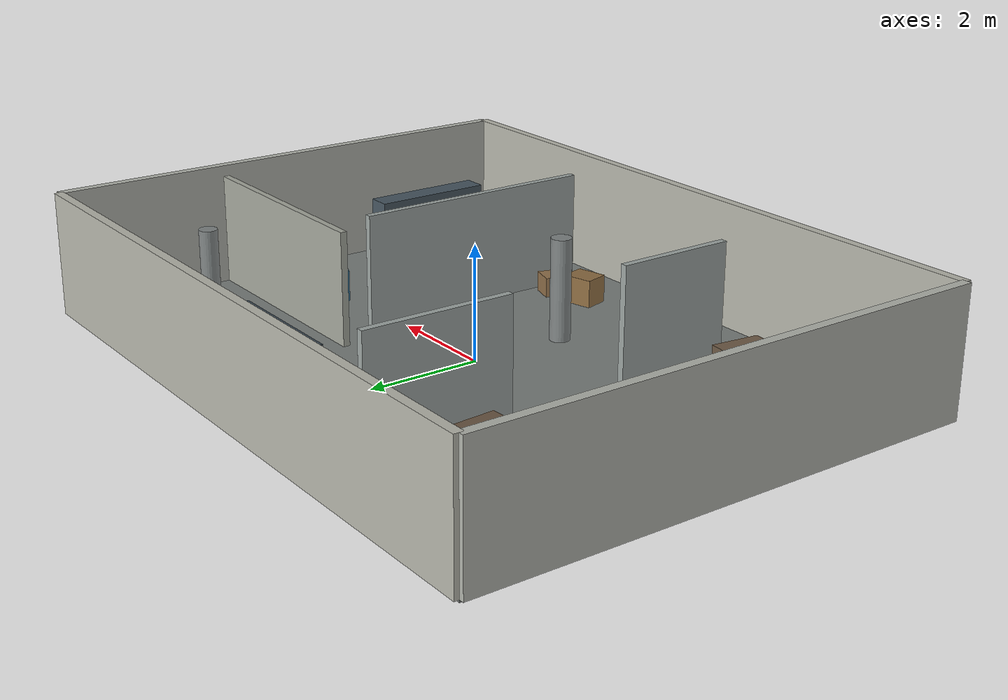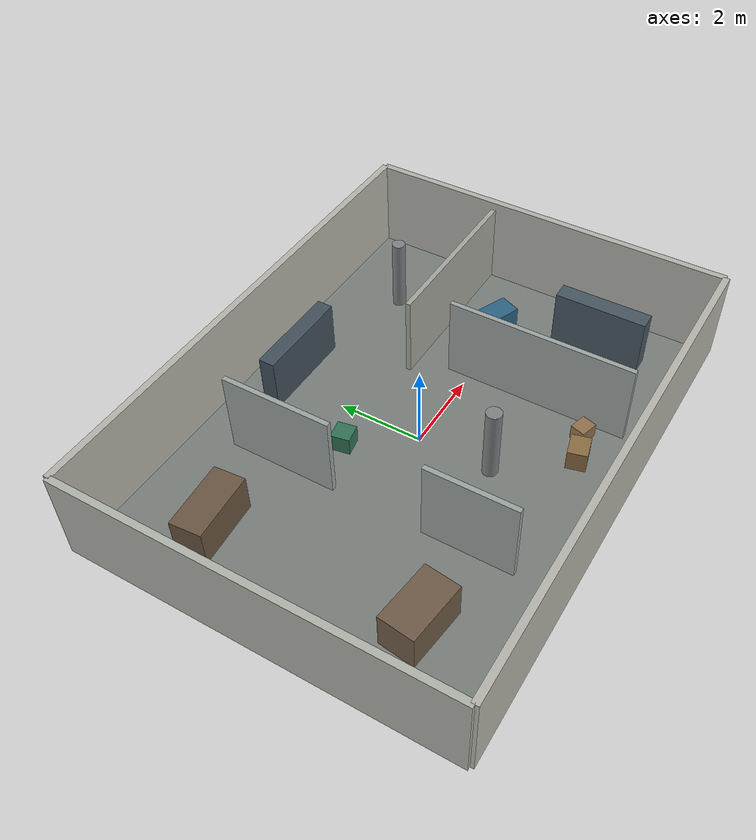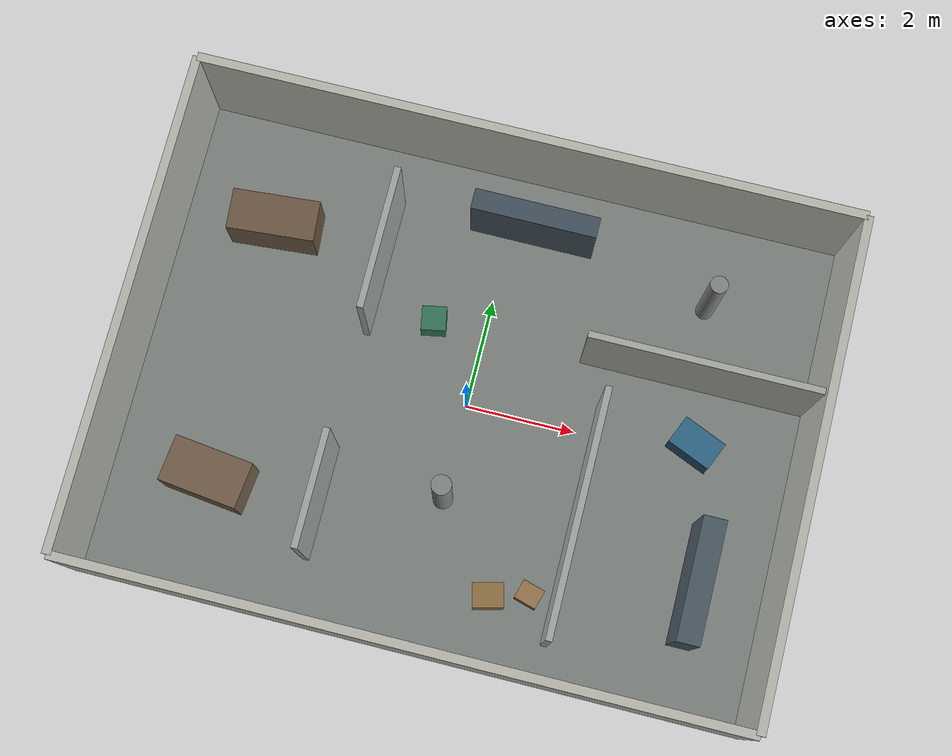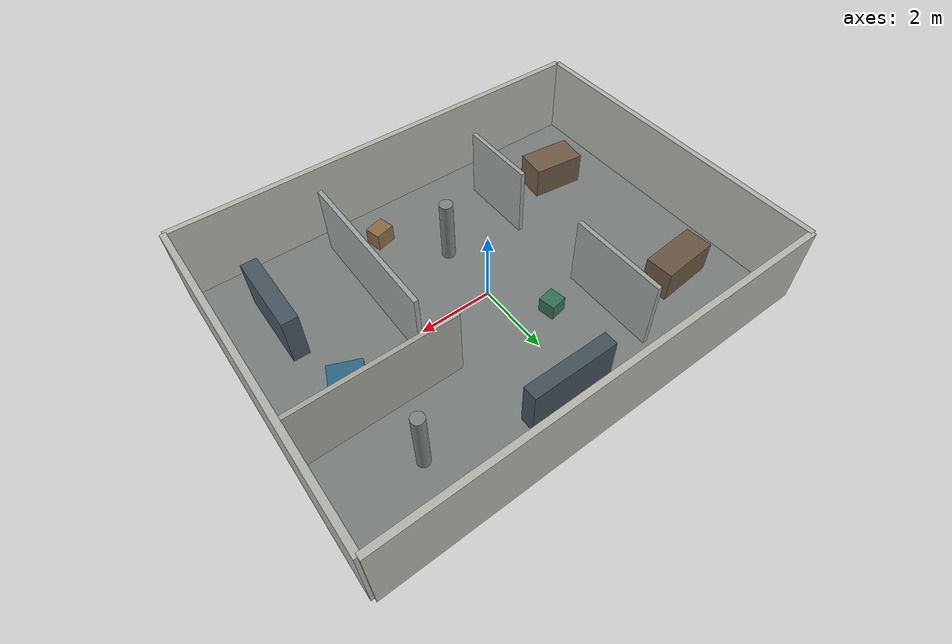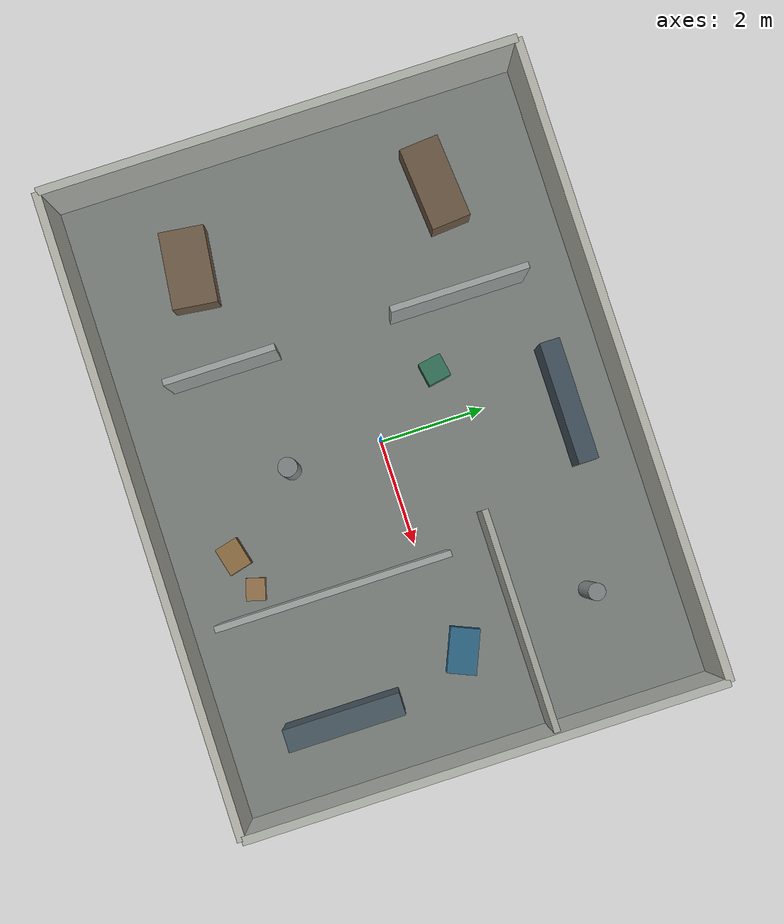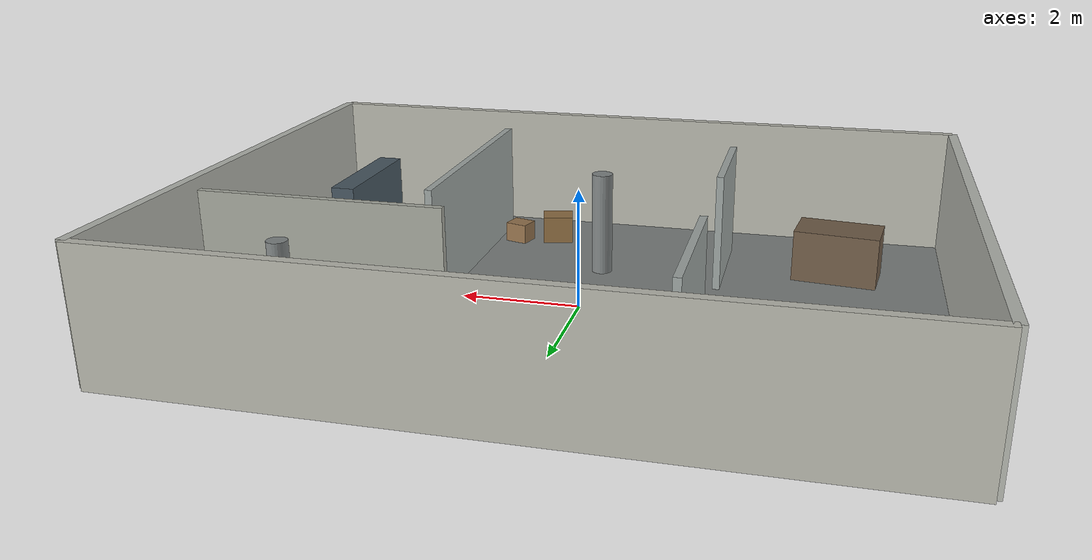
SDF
<?xml version="1.0"?>
<sdf version="1.9">
  <world name="indoor_lab">
    <plugin filename="gz-sim-physics-system" name="gz::sim::systems::Physics"/>
    <plugin filename="gz-sim-user-commands-system" name="gz::sim::systems::UserCommands"/>
    <plugin filename="gz-sim-scene-broadcaster-system" name="gz::sim::systems::SceneBroadcaster"/>
    <plugin filename="gz-sim-sensors-system" name="gz::sim::systems::Sensors">
      <render_engine>ogre2</render_engine>
    </plugin>
    <plugin filename="gz-sim-imu-system" name="gz::sim::systems::Imu"/>

    <scene>
      <ambient>0.45 0.45 0.45 1</ambient>
      <background>0.78 0.82 0.86 1</background>
      <shadows>true</shadows>
    </scene>

    <light name="ceiling_key" type="directional">
      <cast_shadows>true</cast_shadows>
      <pose>0 0 8 0 0 0</pose>
      <diffuse>0.85 0.84 0.78 1</diffuse>
      <specular>0.2 0.2 0.2 1</specular>
      <attenuation>
        <range>20</range>
        <constant>0.8</constant>
        <linear>0.02</linear>
        <quadratic>0.001</quadratic>
      </attenuation>
      <direction>-0.25 0.35 -0.9</direction>
    </light>

    <light name="window_fill" type="point">
      <pose>-4.5 2.8 2.4 0 0 0</pose>
      <diffuse>0.45 0.55 0.65 1</diffuse>
      <specular>0.1 0.1 0.1 1</specular>
      <attenuation>
        <range>9</range>
        <constant>0.7</constant>
        <linear>0.08</linear>
        <quadratic>0.01</quadratic>
      </attenuation>
    </light>

    <model name="floor">
      <static>true</static>
      <pose>0 0 -0.02 0 0 0</pose>
      <link name="link">
        <collision name="collision">
          <geometry>
            <box>
              <size>12 9 0.04</size>
            </box>
          </geometry>
        </collision>
        <visual name="visual">
          <geometry>
            <box>
              <size>12 9 0.04</size>
            </box>
          </geometry>
          <material>
            <ambient>0.48 0.50 0.49 1</ambient>
            <diffuse>0.48 0.50 0.49 1</diffuse>
          </material>
        </visual>
      </link>
    </model>

    <model name="north_wall">
      <static>true</static>
      <pose>0 4.5 1.1 0 0 0</pose>
      <link name="link">
        <collision name="collision"><geometry><box><size>12 0.16 2.2</size></box></geometry></collision>
        <visual name="visual"><geometry><box><size>12 0.16 2.2</size></box></geometry><material><ambient>0.72 0.72 0.68 1</ambient><diffuse>0.72 0.72 0.68 1</diffuse></material></visual>
      </link>
    </model>

    <model name="south_wall">
      <static>true</static>
      <pose>0 -4.5 1.1 0 0 0</pose>
      <link name="link">
        <collision name="collision"><geometry><box><size>12 0.16 2.2</size></box></geometry></collision>
        <visual name="visual"><geometry><box><size>12 0.16 2.2</size></box></geometry><material><ambient>0.72 0.72 0.68 1</ambient><diffuse>0.72 0.72 0.68 1</diffuse></material></visual>
      </link>
    </model>

    <model name="west_wall">
      <static>true</static>
      <pose>-6 0 1.1 0 0 0</pose>
      <link name="link">
        <collision name="collision"><geometry><box><size>0.16 9 2.2</size></box></geometry></collision>
        <visual name="visual"><geometry><box><size>0.16 9 2.2</size></box></geometry><material><ambient>0.70 0.71 0.68 1</ambient><diffuse>0.70 0.71 0.68 1</diffuse></material></visual>
      </link>
    </model>

    <model name="east_wall">
      <static>true</static>
      <pose>6 0 1.1 0 0 0</pose>
      <link name="link">
        <collision name="collision"><geometry><box><size>0.16 9 2.2</size></box></geometry></collision>
        <visual name="visual"><geometry><box><size>0.16 9 2.2</size></box></geometry><material><ambient>0.70 0.71 0.68 1</ambient><diffuse>0.70 0.71 0.68 1</diffuse></material></visual>
      </link>
    </model>

    <model name="left_room_partition_a">
      <static>true</static>
      <pose>-2.1 2.15 1.0 0 0 0</pose>
      <link name="link">
        <collision name="collision"><geometry><box><size>0.12 2.6 2.0</size></box></geometry></collision>
        <visual name="visual"><geometry><box><size>0.12 2.6 2.0</size></box></geometry><material><ambient>0.62 0.65 0.64 1</ambient><diffuse>0.62 0.65 0.64 1</diffuse></material></visual>
      </link>
    </model>

    <model name="left_room_partition_b">
      <static>true</static>
      <pose>-2.1 -2.35 1.0 0 0 0</pose>
      <link name="link">
        <collision name="collision"><geometry><box><size>0.12 2.1 2.0</size></box></geometry></collision>
        <visual name="visual"><geometry><box><size>0.12 2.1 2.0</size></box></geometry><material><ambient>0.62 0.65 0.64 1</ambient><diffuse>0.62 0.65 0.64 1</diffuse></material></visual>
      </link>
    </model>

    <model name="right_room_partition">
      <static>true</static>
      <pose>2.35 -1.65 1.0 0 0 0</pose>
      <link name="link">
        <collision name="collision"><geometry><box><size>0.12 4.4 2.0</size></box></geometry></collision>
        <visual name="visual"><geometry><box><size>0.12 4.4 2.0</size></box></geometry><material><ambient>0.62 0.65 0.64 1</ambient><diffuse>0.62 0.65 0.64 1</diffuse></material></visual>
      </link>
    </model>

    <model name="back_office_wall">
      <static>true</static>
      <pose>3.9 1.35 1.0 0 0 0</pose>
      <link name="link">
        <collision name="collision"><geometry><box><size>4.2 0.12 2.0</size></box></geometry></collision>
        <visual name="visual"><geometry><box><size>4.2 0.12 2.0</size></box></geometry><material><ambient>0.65 0.66 0.62 1</ambient><diffuse>0.65 0.66 0.62 1</diffuse></material></visual>
      </link>
    </model>

    <model name="lab_table_1">
      <static>true</static>
      <pose>-4.2 2.4 0.45 0 0 0.08</pose>
      <link name="link">
        <collision name="collision"><geometry><box><size>1.6 0.75 0.9</size></box></geometry></collision>
        <visual name="visual"><geometry><box><size>1.6 0.75 0.9</size></box></geometry><material><ambient>0.42 0.34 0.26 1</ambient><diffuse>0.42 0.34 0.26 1</diffuse></material></visual>
      </link>
    </model>

    <model name="lab_table_2">
      <static>true</static>
      <pose>-4.1 -2.4 0.45 0 0 -0.12</pose>
      <link name="link">
        <collision name="collision"><geometry><box><size>1.45 0.85 0.9</size></box></geometry></collision>
        <visual name="visual"><geometry><box><size>1.45 0.85 0.9</size></box></geometry><material><ambient>0.44 0.36 0.28 1</ambient><diffuse>0.44 0.36 0.28 1</diffuse></material></visual>
      </link>
    </model>

    <model name="shelf_north">
      <static>true</static>
      <pose>0.4 3.45 0.65 0 0 0</pose>
      <link name="link">
        <collision name="collision"><geometry><box><size>2.3 0.38 1.3</size></box></geometry></collision>
        <visual name="visual"><geometry><box><size>2.3 0.38 1.3</size></box></geometry><material><ambient>0.26 0.32 0.36 1</ambient><diffuse>0.26 0.32 0.36 1</diffuse></material></visual>
      </link>
    </model>

    <model name="shelf_east">
      <static>true</static>
      <pose>4.65 -2.2 0.7 0 0 1.5708</pose>
      <link name="link">
        <collision name="collision"><geometry><box><size>2.2 0.42 1.4</size></box></geometry></collision>
        <visual name="visual"><geometry><box><size>2.2 0.42 1.4</size></box></geometry><material><ambient>0.28 0.34 0.38 1</ambient><diffuse>0.28 0.34 0.38 1</diffuse></material></visual>
      </link>
    </model>

    <model name="shipping_box_1">
      <static>true</static>
      <pose>1.2 -3.25 0.25 0 0 0.25</pose>
      <link name="link">
        <collision name="collision"><geometry><box><size>0.55 0.45 0.5</size></box></geometry></collision>
        <visual name="visual"><geometry><box><size>0.55 0.45 0.5</size></box></geometry><material><ambient>0.56 0.43 0.26 1</ambient><diffuse>0.56 0.43 0.26 1</diffuse></material></visual>
      </link>
    </model>

    <model name="shipping_box_2">
      <static>true</static>
      <pose>1.9 -3.05 0.18 0 0 -0.28</pose>
      <link name="link">
        <collision name="collision"><geometry><box><size>0.42 0.36 0.36</size></box></geometry></collision>
        <visual name="visual"><geometry><box><size>0.42 0.36 0.36</size></box></geometry><material><ambient>0.58 0.45 0.30 1</ambient><diffuse>0.58 0.45 0.30 1</diffuse></material></visual>
      </link>
    </model>

    <model name="round_column_1">
      <static>true</static>
      <pose>0.0 -1.75 0.9 0 0 0</pose>
      <link name="link">
        <collision name="collision"><geometry><cylinder><radius>0.18</radius><length>1.8</length></cylinder></geometry></collision>
        <visual name="visual"><geometry><cylinder><radius>0.18</radius><length>1.8</length></cylinder></geometry><material><ambient>0.50 0.52 0.52 1</ambient><diffuse>0.50 0.52 0.52 1</diffuse></material></visual>
      </link>
    </model>

    <model name="round_column_2">
      <static>true</static>
      <pose>3.8 2.8 0.9 0 0 0</pose>
      <link name="link">
        <collision name="collision"><geometry><cylinder><radius>0.16</radius><length>1.8</length></cylinder></geometry></collision>
        <visual name="visual"><geometry><cylinder><radius>0.16</radius><length>1.8</length></cylinder></geometry><material><ambient>0.50 0.52 0.52 1</ambient><diffuse>0.50 0.52 0.52 1</diffuse></material></visual>
      </link>
    </model>

    <model name="low_cart">
      <static>true</static>
      <pose>4.15 0.25 0.28 0 0 -0.4</pose>
      <link name="link">
        <collision name="collision"><geometry><box><size>0.85 0.55 0.56</size></box></geometry></collision>
        <visual name="visual"><geometry><box><size>0.85 0.55 0.56</size></box></geometry><material><ambient>0.18 0.40 0.52 1</ambient><diffuse>0.18 0.40 0.52 1</diffuse></material></visual>
      </link>
    </model>

    <model name="small_bin">
      <static>true</static>
      <pose>-0.95 1.35 0.22 0 0 0.18</pose>
      <link name="link">
        <collision name="collision"><geometry><box><size>0.45 0.45 0.44</size></box></geometry></collision>
        <visual name="visual"><geometry><box><size>0.45 0.45 0.44</size></box></geometry><material><ambient>0.20 0.45 0.34 1</ambient><diffuse>0.20 0.45 0.34 1</diffuse></material></visual>
      </link>
    </model>

    <gui fullscreen="0">
      <camera name="user_camera">
        <pose>2.5 -7.5 5.0 0 0.65 1.0</pose>
        <view_controller>orbit</view_controller>
        <projection_type>perspective</projection_type>
      </camera>
    </gui>
  </world>
</sdf>
